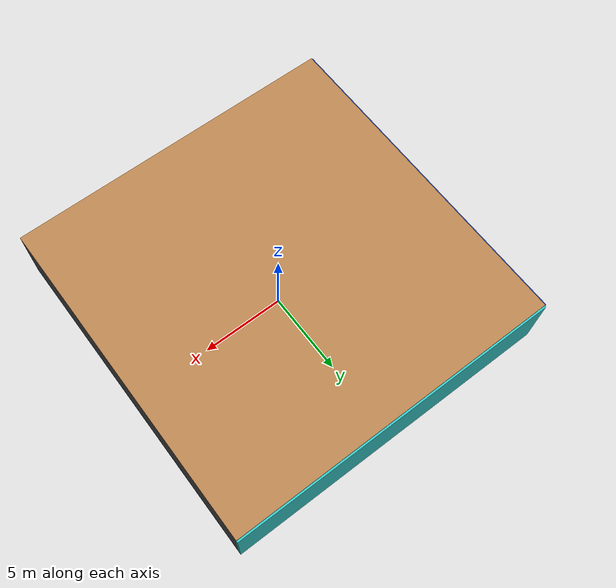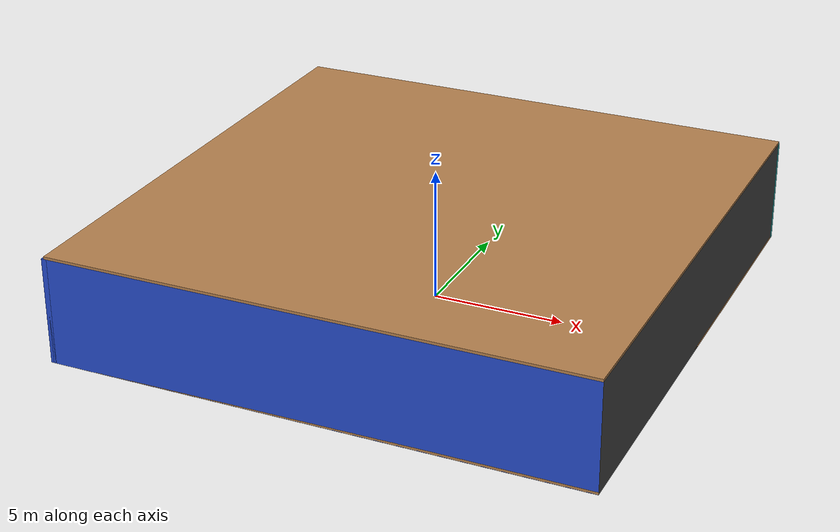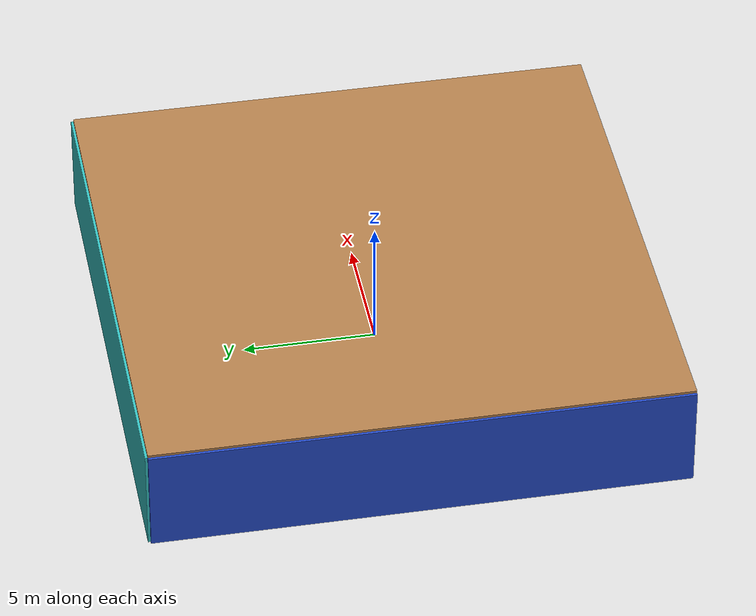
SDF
<sdf version="1.4">
 <world name="default">
  <physics type="ode">
   <max_step_size>0.001</max_step_size>
   <real_time_factor>1</real_time_factor>
   <real_time_update_rate>1000</real_time_update_rate>
   <gravity>0 0 -9.8</gravity>
  </physics>
  <scene><ambient>0.4 0.4 0.4 1</ambient><background>0.7 0.7 0.7 1</background><shadows>1</shadows></scene>
  <model name="Surrounding">
   <static>1</static>
   <link name="Ceiling">
    <collision name="Ceiling_Collision"><geometry><box><size>20 20 0.1</size></box></geometry></collision>
    <visual name="Ceiling_Visual">
     <geometry><box><size>20 20 0.1</size></box></geometry>
     <material>
      <script><uri>file://media/materials/scripts/gazebo.material</uri><name>Gazebo/WoodPallet</name></script>
     </material>
    </visual>
    <pose>0 0 4.05 0 0 0</pose>
   </link>
   <link name="Wall_South">
    <collision name="Wall_South_Collision">
     <geometry><box><size>20 0 4</size></box></geometry>
     <pose>0 0 2 0 -0 0</pose>
    </collision>
    <visual name="Wall_South_Visual">
     <pose>0 0 2 0 -0 0</pose>
     <geometry><box><size>20 0 4</size></box></geometry>
     <material>
      <script><uri>file://media/materials/scripts/gazebo.material</uri><name>Gazebo/BlueGlow</name></script>
     </material>
    </visual>
    <velocity_decay><linear>0</linear><angular>0</angular></velocity_decay>
    <pose>0 -10 0 0 -0 0</pose>
   </link>
   <link name="Wall_East">
    <collision name="Wall_21_Collision">
     <geometry><box><size>20 0 4</size></box></geometry>
     <pose>0 0 2 0 -0 0</pose>
    </collision>
    <visual name="Wall_21_Visual">
     <pose>0 0 2 0 -0 0</pose>
     <geometry><box><size>20 0 4</size></box></geometry>
     <material>
      <script><uri>file://media/materials/scripts/gazebo.material</uri><name>Gazebo/Road</name></script>
     </material>
    </visual>
    <velocity_decay><linear>0</linear><angular>0</angular></velocity_decay>
    <pose>10 0 0 0 -0 1.5708</pose>
   </link>
   <link name="Wall_North">
    <collision name="Wall_22_Collision">
     <geometry><box><size>20 0.2 4</size></box></geometry>
     <pose>0 0 2 0 -0 0</pose>
    </collision>
    <visual name="Wall_22_Visual">
     <pose>0 0 2 0 -0 0</pose>
     <geometry><box><size>20 0.2 4</size></box></geometry>
     <material>
      <script>
       <uri>file://media/materials/scripts/gazebo.material</uri>
       <name>Gazebo/TurquoiseGlowOutline</name>
      </script>
     </material>
    </visual>
    <velocity_decay><linear>0</linear><angular>0</angular></velocity_decay>
    <pose>0 10 0 0 -0 0</pose>
   </link>
   <link name="Wall_West">
    <collision name="Wall_23_Collision">
     <geometry><box><size>20 0.2 4</size></box></geometry>
     <pose>0 0 2 0 -0 0</pose>
    </collision>
    <visual name="Wall_23_Visual">
     <pose>0 0 2 0 -0 0</pose>
     <geometry><box><size>20 0.2 4</size></box></geometry>
     <material>
      <script><uri>file://media/materials/scripts/gazebo.material</uri><name>Gazebo/BlueGlow</name></script>
     </material>
    </visual>
    <velocity_decay><linear>0</linear><angular>0</angular></velocity_decay>
    <pose>-10 0 0 0 0 -1.5708</pose>
   </link>
   <link name="Ground_link">
    <collision name="collision">
     <pose>0 0 .05 0 -0 0</pose>
     <geometry><box><size>20 20 0.1</size></box></geometry>
    </collision>
    <visual name="visual">
     <pose>0 0 .05 0 -0 0</pose>
     <geometry><box><size>20 20 0.1</size></box></geometry>
     <material>
      <script><uri>file://media/materials/scripts/gazebo.material</uri><name>Gazebo/WoodFloor</name></script>
     </material>
    </visual>
   </link>
   <static>1</static>
  </model>
  <spherical_coordinates>
   <surface_model>EARTH_WGS84</surface_model>
   <latitude_deg>0</latitude_deg>
   <longitude_deg>0</longitude_deg>
   <elevation>0</elevation>
   <heading_deg>0</heading_deg>
  </spherical_coordinates>
  <light name="lightball_0" type="diffuse">
   <diffuse>0.8 0.8 0.8 1</diffuse>
   <specular>0.2 0.2 0.2 1</specular>
   <attenuation>
    <range>100</range>
    <constant>0.7</constant>
    <linear>0.01</linear>
    <quadratic>0.001</quadratic>
   </attenuation>
   <direction>-0.5 0.1 -0.9</direction>
   <pose>-8.76793392826 7.51110290449 0.743018188302 0 0 0</pose>
  </light>
  <light name="lightball_1" type="diffuse">
   <diffuse>0.8 0.8 0.8 1</diffuse>
   <specular>0.2 0.2 0.2 1</specular>
   <attenuation>
    <range>100</range>
    <constant>0.7</constant>
    <linear>0.01</linear>
    <quadratic>0.001</quadratic>
   </attenuation>
   <direction>-0.5 0.1 -0.9</direction>
   <pose>-3.86849762042 5.36925354837 3.04015035602 0 0 0</pose>
  </light>
  <light name="lightball_2" type="diffuse">
   <diffuse>0.8 0.8 0.8 1</diffuse>
   <specular>0.2 0.2 0.2 1</specular>
   <attenuation>
    <range>100</range>
    <constant>0.7</constant>
    <linear>0.01</linear>
    <quadratic>0.001</quadratic>
   </attenuation>
   <direction>-0.5 0.1 -0.9</direction>
   <pose>1.42155748597 -3.28248376161 2.99054668935 0 0 0</pose>
  </light>
  <light name="lightball_3" type="diffuse">
   <diffuse>0.8 0.8 0.8 1</diffuse>
   <specular>0.2 0.2 0.2 1</specular>
   <attenuation>
    <range>100</range>
    <constant>0.7</constant>
    <linear>0.01</linear>
    <quadratic>0.001</quadratic>
   </attenuation>
   <direction>-0.5 0.1 -0.9</direction>
   <pose>3.82219227066 7.67857138114 1.789374186 0 0 0</pose>
  </light>
  <light name="lightball_4" type="diffuse">
   <diffuse>0.8 0.8 0.8 1</diffuse>
   <specular>0.2 0.2 0.2 1</specular>
   <attenuation>
    <range>100</range>
    <constant>0.7</constant>
    <linear>0.01</linear>
    <quadratic>0.001</quadratic>
   </attenuation>
   <direction>-0.5 0.1 -0.9</direction>
   <pose>-2.56302063431 3.02761553811 0.762392135819 0 0 0</pose>
  </light>
  <include>
   <uri>model://robocup_3Dsim_goal</uri>
   <pose>-7.42250098975 0.515359760483 0 0 0 0.50456924987</pose>
  </include>
  <include><uri>model://table</uri><pose>-1.81304210344 -8.29270591357 0 0 0 0.673585330103</pose></include>
  <include>
   <uri>model://robocup_3Dsim_goal</uri>
   <pose>1.63583764464 3.51957580746 0 0 0 2.27933369152</pose>
  </include>
 </world>
</sdf>

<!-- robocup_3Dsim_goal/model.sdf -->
<sdf version="1.5">
  <model name="robocup_3d_goal">
    <static>true</static>
    <link name="left_post">
      <pose>0 1.05 0.45 0 0 0</pose>
      <collision name="collision">
        <geometry>
          <cylinder>
            <radius>0.05</radius>
            <length>0.9</length>
          </cylinder>
        </geometry>
      </collision>
      <visual name="visual">
        <geometry>
          <cylinder>
            <radius>0.05</radius>
            <length>0.9</length>
          </cylinder>
        </geometry>
        <material>
          <script>
            <uri>file://media/materials/scripts/gazebo.material</uri>
            <name>Gazebo/ZincYellow</name>
          </script>
        </material>
      </visual>
    </link>
    <link name="left_support_horiz_lower">
      <pose>0.30 1.05 0.01 0 0 0</pose>
      <collision name="collision">
        <geometry>
          <box>
            <size>0.50 0.02 0.02</size>
          </box>
        </geometry>
      </collision>
      <visual name="visual">
        <geometry>
          <box>
            <size>0.50 0.02 0.02</size>
          </box>
        </geometry>
        <material>
          <script>
            <uri>file://media/materials/scripts/gazebo.material</uri>
            <name>Gazebo/White</name>
          </script>
        </material>
      </visual>
    </link>
    <link name="left_support_horiz_upper">
      <pose>0.30 1.05 0.79 0 0 0</pose>
      <collision name="collision">
        <geometry>
          <box>
            <size>0.50 0.02 0.02</size>
          </box>
        </geometry>
      </collision>
      <visual name="visual">
        <geometry>
          <box>
            <size>0.50 0.02 0.02</size>
          </box>
        </geometry>
        <material>
          <script>
            <uri>file://media/materials/scripts/gazebo.material</uri>
            <name>Gazebo/White</name>
          </script>
        </material>
      </visual>
    </link>
    <link name="left_support_vertical">
      <pose>0.56 1.05 0.4 0 1.5708 0</pose>
      <collision name="collision">
        <geometry>
          <box>
            <size>0.80 0.02 0.02</size>
          </box>
        </geometry>
      </collision>
      <visual name="visual">
        <geometry>
          <box>
            <size>0.80 0.02 0.02</size>
          </box>
        </geometry>
        <material>
          <script>
            <uri>file://media/materials/scripts/gazebo.material</uri>
            <name>Gazebo/White</name>
          </script>
        </material>
      </visual>
    </link>
    <link name="right_support_horiz_lower">
      <pose>0.30 -1.05 0.01 0 0 0</pose>
      <collision name="collision">
        <geometry>
          <box>
            <size>0.50 0.02 0.02</size>
          </box>
        </geometry>
      </collision>
      <visual name="visual">
        <geometry>
          <box>
            <size>0.50 0.02 0.02</size>
          </box>
        </geometry>
        <material>
          <script>
            <uri>file://media/materials/scripts/gazebo.material</uri>
            <name>Gazebo/White</name>
          </script>
        </material>
      </visual>
    </link>
    <link name="right_support_horiz_upper">
      <pose>0.30 -1.05 0.79 0 0 0</pose>
      <collision name="collision">
        <geometry>
          <box>
            <size>0.50 0.02 0.02</size>
          </box>
        </geometry>
      </collision>
      <visual name="visual">
        <geometry>
          <box>
            <size>0.50 0.02 0.02</size>
          </box>
        </geometry>
        <material>
          <script>
            <uri>file://media/materials/scripts/gazebo.material</uri>
            <name>Gazebo/White</name>
          </script>
        </material>
      </visual>
    </link>
    <link name="right_support_vertical">
      <pose>0.56 -1.05 0.4 0 1.5708 0</pose>
      <collision name="collision">
        <geometry>
          <box>
            <size>0.80 0.02 0.02</size>
          </box>
        </geometry>
      </collision>
      <visual name="visual">
        <geometry>
          <box>
            <size>0.80 0.02 0.02</size>
          </box>
        </geometry>
        <material>
          <script>
            <uri>file://media/materials/scripts/gazebo.material</uri>
            <name>Gazebo/White</name>
          </script>
        </material>
      </visual>
    </link>
    <link name="center_support_horiz_lower">
      <pose>0.56 0 0.01 0 1.5708 0</pose>
      <collision name="collision">
        <geometry>
          <box>
            <size>0.02 2.08 0.02</size>
          </box>
        </geometry>
      </collision>
      <visual name="visual">
        <geometry>
          <box>
            <size>0.02 2.08 0.02</size>
          </box>
        </geometry>
        <material>
          <script>
            <uri>file://media/materials/scripts/gazebo.material</uri>
            <name>Gazebo/White</name>
          </script>
        </material>
      </visual>
    </link>
    <link name="center_support_horiz_upper">
      <pose>0.56 0 0.79 0 1.5708 0</pose>
      <collision name="collision">
        <geometry>
          <box>
            <size>0.02 2.08 0.02</size>
          </box>
        </geometry>
      </collision>
      <visual name="visual">
        <geometry>
          <box>
            <size>0.02 2.08 0.02</size>
          </box>
        </geometry>
        <material>
          <script>
            <uri>file://media/materials/scripts/gazebo.material</uri>
            <name>Gazebo/White</name>
          </script>
        </material>
      </visual>
    </link>
    <link name="right_post">
      <pose>0 -1.05 0.45 0 0 0</pose>
      <collision name="collision">
        <geometry>
          <cylinder>
            <radius>0.05</radius>
            <length>0.9</length>
          </cylinder>
        </geometry>
      </collision>
      <visual name="visual">
        <geometry>
          <cylinder>
            <radius>0.05</radius>
            <length>0.9</length>
          </cylinder>
        </geometry>
        <material>
          <script>
            <uri>file://media/materials/scripts/gazebo.material</uri>
            <name>Gazebo/ZincYellow</name>
          </script>
        </material>
      </visual>
    </link>
    <link name="crossbar">
      <pose>0 0 0.85 1.57 1.57 0</pose>
      <collision name="collision">
        <geometry>
          <cylinder>
            <radius>0.05</radius>
            <length>2.0</length>
          </cylinder>
        </geometry>
      </collision>
      <visual name="visual">
        <geometry>
          <cylinder>
            <radius>0.05</radius>
            <length>2.0</length>
          </cylinder>
        </geometry>
        <material>
          <script>
            <uri>file://media/materials/scripts/gazebo.material</uri>
            <name>Gazebo/ZincYellow</name>
          </script>
        </material>
      </visual>
    </link>
    <link name="center_net">
      <pose>0.56 0 0.40 0 0 0</pose>
      <collision name="collision">
        <geometry>
          <box>
            <size>0.01 2.1 0.80</size>
          </box>
        </geometry>
      </collision>
      <visual name="visual">
        <geometry>
          <box>
            <size>0.01 2.1 0.80</size>
          </box>
        </geometry>
        <material>
          <script>
            <uri>model://../model_source/models/robocup09_spl_field/materials/scripts/</uri>
            <uri>model://../model_source/models/robocup09_spl_field/materials/textures/</uri>
            <name>RoboCup/Net</name>
          </script>
        </material>
      </visual>
    </link>
    <link name="left_net">
      <pose>0.30 1.05 0.40 0 0 0</pose>
      <collision name="collision">
        <geometry>
          <box>
            <size>0.50 0.01 0.76</size>
          </box>
        </geometry>
      </collision>
      <visual name="visual">
        <geometry>
          <box>
            <size>0.50 0.01 0.76</size>
          </box>
        </geometry>
        <material>
          <script>
            <uri>model://../model_source/models/robocup09_spl_field/materials/scripts/</uri>
            <uri>model://../model_source/models/robocup09_spl_field/materials/textures/</uri>
            <name>RoboCup/Net</name>
          </script>
        </material>
      </visual>
    </link>
    <link name="right_net">
      <pose>0.30 -1.05 0.40 0 0 0</pose>
      <collision name="collision">
        <geometry>
          <box>
            <size>0.50 0.01 0.76</size>
          </box>
        </geometry>
      </collision>
      <visual name="visual">
        <geometry>
          <box>
            <size>0.50 0.01 0.76</size>
          </box>
        </geometry>
        <material>
          <script>
            <uri>model://../model_source/models/robocup09_spl_field/materials/scripts/</uri>
            <uri>model://../model_source/models/robocup09_spl_field/materials/textures/</uri>
            <name>RoboCup/Net</name>
          </script>
        </material>
      </visual>
    </link>
  </model>
</sdf>

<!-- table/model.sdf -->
<sdf version="1.5">
  <model name="table">
    <static>true</static>
    <link name="link">
      <collision name="surface">
        <pose>0 0 1.0 0 0 0</pose>
        <geometry>
          <box>
            <size>1.5 0.8 0.03</size>
          </box>
        </geometry>
        <surface>
          <friction>
            <ode>
              <mu>0.6</mu>
              <mu2>0.6</mu2>
            </ode>
          </friction>
        </surface>
      </collision>
      <visual name="visual1">
        <pose>0 0 1.0 0 0 0</pose>
        <geometry>
          <box>
            <size>1.5 0.8 0.03</size>
          </box>
        </geometry>
        <material>
          <script>
            <uri>model://media/materials/scripts/gazebo.material</uri>
            <name>Gazebo/Wood</name>
          </script>
        </material>
      </visual>
      <collision name="front_left_leg">
        <pose>0.68 0.38 0.5 0 0 0</pose>
        <geometry>
          <cylinder>
            <radius>0.02</radius>
            <length>1.0</length>
          </cylinder>
        </geometry>
      </collision>
      <visual name="front_left_leg">
        <pose>0.68 0.38 0.5 0 0 0</pose>
        <geometry>
          <cylinder>
            <radius>0.02</radius>
            <length>1.0</length>
          </cylinder>
        </geometry>
        <material>
          <script>
            <uri>model://media/materials/scripts/gazebo.material</uri>
            <name>Gazebo/Grey</name>
          </script>
        </material>
      </visual>
      <collision name="front_right_leg">
        <pose>0.68 -0.38 0.5 0 0 0</pose>
        <geometry>
          <cylinder>
            <radius>0.02</radius>
            <length>1.0</length>
          </cylinder>
        </geometry>
      </collision>
      <visual name="front_right_leg">
        <pose>0.68 -0.38 0.5 0 0 0</pose>
        <geometry>
          <cylinder>
            <radius>0.02</radius>
            <length>1.0</length>
          </cylinder>
        </geometry>
        <material>
          <script>
            <uri>model://media/materials/scripts/gazebo.material</uri>
            <name>Gazebo/Grey</name>
          </script>
        </material>
      </visual>
      <collision name="back_right_leg">
        <pose>-0.68 -0.38 0.5 0 0 0</pose>
        <geometry>
          <cylinder>
            <radius>0.02</radius>
            <length>1.0</length>
          </cylinder>
        </geometry>
      </collision>
      <visual name="back_right_leg">
        <pose>-0.68 -0.38 0.5 0 0 0</pose>
        <geometry>
          <cylinder>
            <radius>0.02</radius>
            <length>1.0</length>
          </cylinder>
        </geometry>
        <material>
          <script>
            <uri>model://media/materials/scripts/gazebo.material</uri>
            <name>Gazebo/Grey</name>
          </script>
        </material>
      </visual>
      <collision name="back_left_leg">
        <pose>-0.68 0.38 0.5 0 0 0</pose>
        <geometry>
          <cylinder>
            <radius>0.02</radius>
            <length>1.0</length>
          </cylinder>
        </geometry>
      </collision>
      <visual name="back_left_leg">
        <pose>-0.68 0.38 0.5 0 0 0</pose>
        <geometry>
          <cylinder>
            <radius>0.02</radius>
            <length>1.0</length>
          </cylinder>
        </geometry>
        <material>
          <script>
            <uri>model://media/materials/scripts/gazebo.material</uri>
            <name>Gazebo/Grey</name>
          </script>
        </material>
      </visual>
    </link>
  </model>
</sdf>
